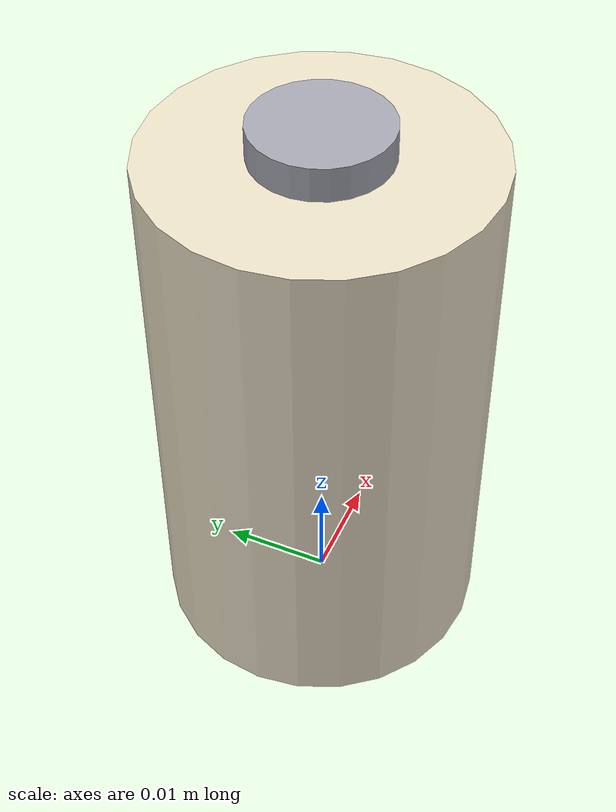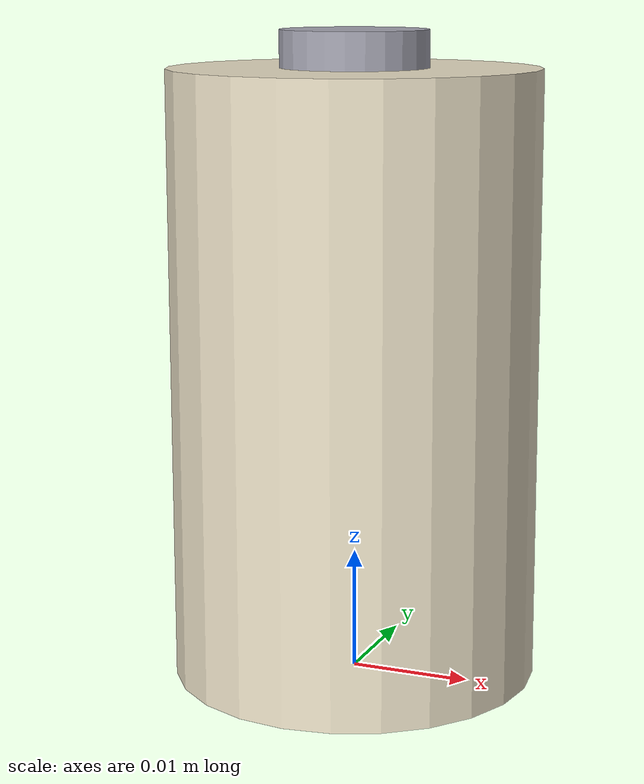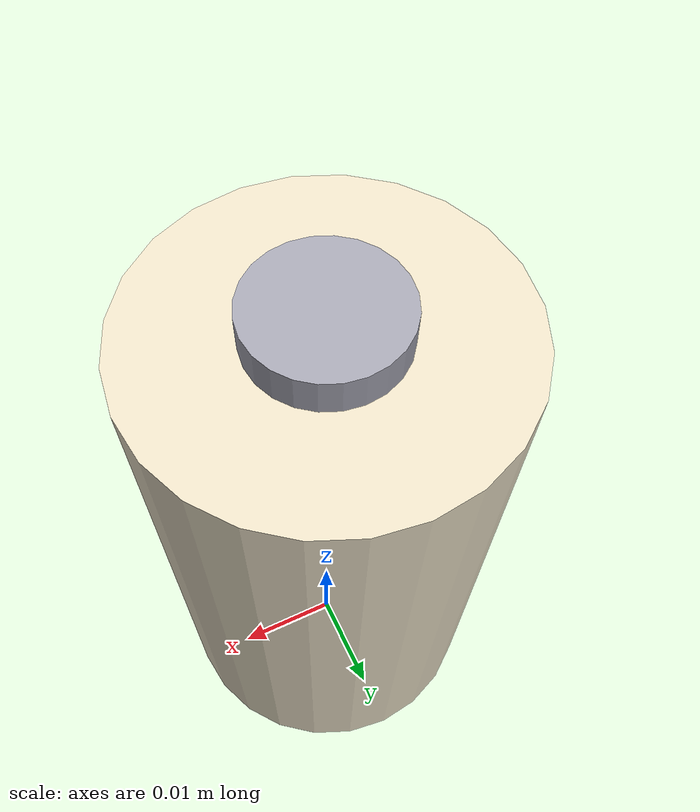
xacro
<?xml version="1.0"?>
<robot xmlns:xacro="http://www.ros.org/wiki/xacro" name="chess_piece">

  <xacro:arg name="name"     default="piece"/>
  <xacro:arg name="colour"   default="white"/>
  <xacro:arg name="mesh_uri" default=""/>
  <xacro:arg name="height"   default="0.05"/>
  <xacro:arg name="radius"   default="0.015"/>
  <xacro:arg name="mass"     default="0.05"/>

  <!-- Convert string args to numbers for arithmetic expressions. -->
  <xacro:property name="nm"  value="$(arg name)"/>
  <xacro:property name="col" value="$(arg colour)"/>
  <xacro:property name="mu"  value="$(arg mesh_uri)"/>
  <xacro:property name="h"   value="${float('$(arg height)')}"/>
  <xacro:property name="r"   value="${float('$(arg radius)')}"/>
  <xacro:property name="m"   value="${float('$(arg mass)')}"/>

  <xacro:property name="rgba"
      value="${'0.92 0.88 0.78 1' if col == 'white' else '0.10 0.10 0.10 1'}"/>

  <!-- Main body -->
  <link name="${nm}_base">
    <inertial>
      <mass value="${m}"/>
      <origin xyz="0 0 ${h/2.0}" rpy="0 0 0"/>
      <inertia
        ixx="${(1.0/12.0)*m*(3.0*r*r + h*h)}"
        ixy="0" ixz="0"
        iyy="${(1.0/12.0)*m*(3.0*r*r + h*h)}"
        iyz="0"
        izz="${0.5*m*r*r}"/>
    </inertial>

    <xacro:if value="${mu == ''}">
      <visual>
        <origin xyz="0 0 ${h/2.0}" rpy="0 0 0"/>
        <geometry><cylinder radius="${r}" length="${h}"/></geometry>
        <material name="${nm}_mat"><color rgba="${rgba}"/></material>
      </visual>
    </xacro:if>

    <xacro:unless value="${mu == ''}">
      <visual>
        <origin xyz="0 0 0" rpy="0 0 0"/>
        <geometry><mesh filename="${mu}" scale="0.001 0.001 0.001"/></geometry>
        <material name="${nm}_mat"><color rgba="${rgba}"/></material>
      </visual>
    </xacro:unless>
  </link>

  <!-- Ferromagnetic disc on top; target of the magnetic gripper. -->
  <link name="${nm}_magnet">
    <inertial>
      <mass value="0.002"/>
      <origin xyz="0 0 0" rpy="0 0 0"/>
      <inertia ixx="1e-7" ixy="0" ixz="0" iyy="1e-7" iyz="0" izz="1e-7"/>
    </inertial>
    <visual>
      <origin xyz="0 0 0" rpy="0 0 0"/>
      <geometry><cylinder radius="${r*0.4}" length="0.003"/></geometry>
      <material name="${nm}_magnet_mat"><color rgba="0.65 0.65 0.7 1.0"/></material>
    </visual>
  </link>

  <joint name="${nm}_magnet_joint" type="fixed">
    <parent link="${nm}_base"/>
    <child  link="${nm}_magnet"/>
    <origin xyz="0 0 ${h + 0.0015}" rpy="0 0 0"/>
  </joint>

  <gazebo>
    <static>true</static>
  </gazebo>

</robot>
